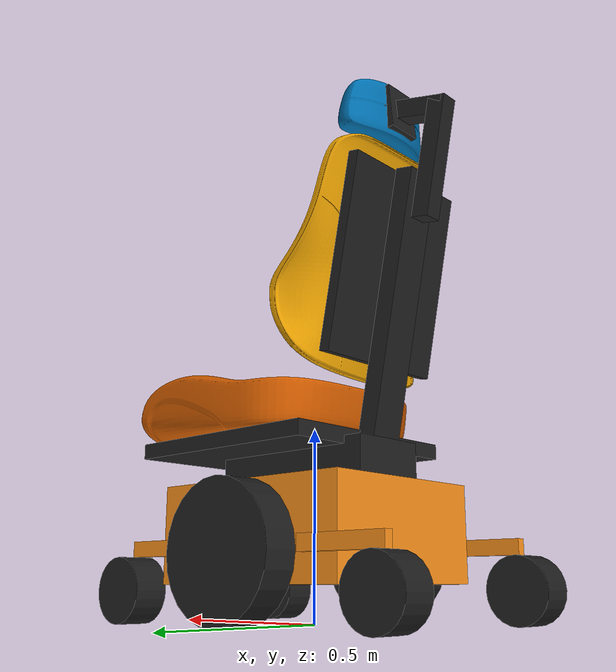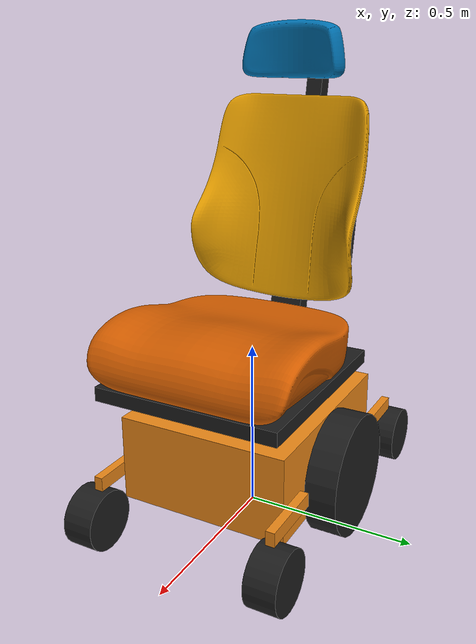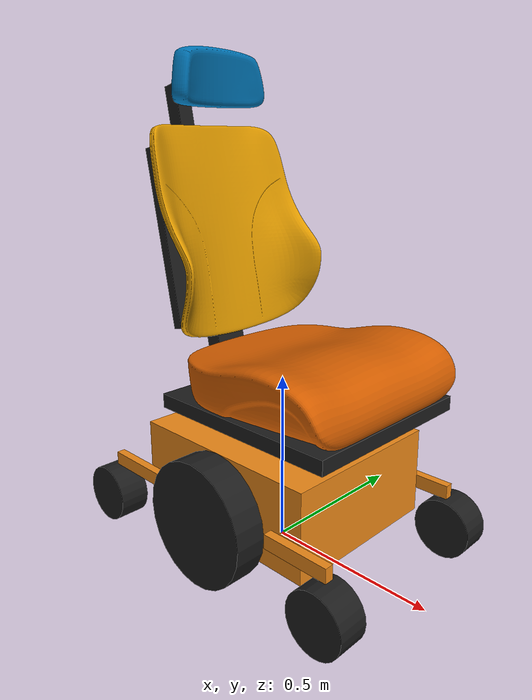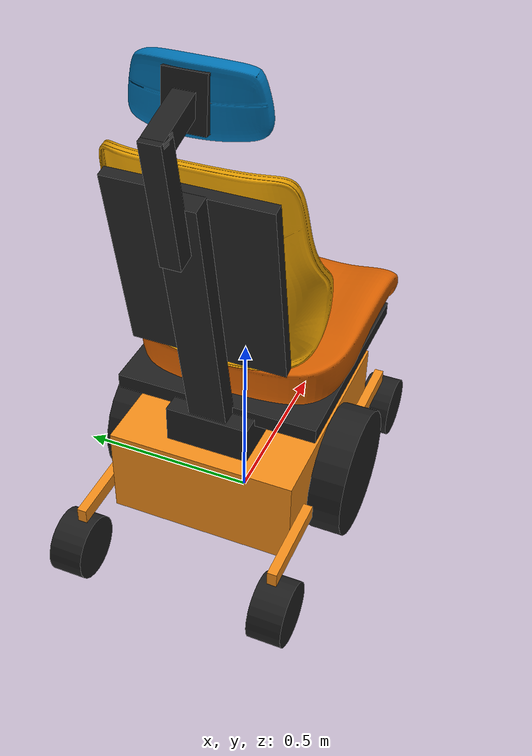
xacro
<?xml version="1.0"?>
<!-- 4 Wheel Robot with front steering and rear drive -->
<robot xmlns:xacro="http://www.ros.org/wiki/xacro" name="wheelchair">

 <!-- Import Rviz colors -->
  <xacro:include filename="$(find ros2_control_wheelchair)/description/material/wheelchair.materials.xacro" />

  <xacro:include filename="$(find ros2_control_wheelchair)/description/urdf/wheelchair_description_test.urdf.xacro" />

  <xacro:wheelchair/>

</robot>

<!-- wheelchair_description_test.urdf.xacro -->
<robot xmlns:xacro="http://www.ros.org/wiki/xacro">

  <xacro:macro name="wheelchair">

  <link name="chassis">
      <collision>
        <origin xyz="0 0 0.225" rpy="0 0 0"/>
        <geometry>
          <box size="0.6 0.5 0.25"/>
        </geometry>
      </collision>

      <visual>
        <origin xyz="0 0 0.225" rpy="0 0 0"/>
        <geometry>
          <box size="0.6 0.5 0.25"/>
        </geometry>
        <material name="orange"/>
      </visual>

      <inertial>
        <origin xyz="0.0 0.0 0.225" rpy="0 0 0"/>
        <mass value="70"/>
        <inertia
          ixx="1.82291666667"
          ixy="0.0"
          ixz="0.0"
          iyy="2.46458333333"
          iyz="0.0"
          izz="3.55833333333"/>
      </inertial>
    </link>

    <!-- left wheel Link -->
    <link name="left_wheel">
      <collision>
        <geometry>
          <cylinder length="0.09" radius="0.175" />
        </geometry>
      </collision>
      <visual>
        <geometry>
          <cylinder length="0.09" radius="0.175" />
        </geometry>
        <material name="black" />
      </visual>

      <inertial>
        <mass value="5" />
        <inertia ixx="0.041656" ixy="0.0" ixz="0.0" iyy="0.041656" iyz="0.0" izz="0.0765625" />
      </inertial>
    </link>

     <!-- right wheel Link -->
    <link name="right_wheel">
      <collision>
        <geometry>
          <cylinder length="0.09" radius="0.175" />
        </geometry>
      </collision>
      <visual>
        <geometry>
          <cylinder length="0.09" radius="0.175" />
        </geometry>
        <material name="black" />
      </visual>

      <inertial>
        <mass value="5" />
        <inertia ixx="0.041656" ixy="0.0" ixz="0.0" iyy="0.041656" iyz="0.0" izz="0.0765625" />
      </inertial>
    </link>

    <link name="fixation_front_left">
      <collision>
        <origin xyz="0 0 0" rpy="0 0 0"/>
        <geometry>
          <box size="0.2 0.025 0.04"/>
        </geometry>
      </collision>

      <visual>
        <origin xyz="0 0 0" rpy="0 0 0"/>
        <geometry>
          <box size="0.2 0.025 0.04"/>
        </geometry>
        <material name="orange"/>
      </visual>

      <inertial>
        <origin xyz="0 0 0" rpy="0 0 0"/>
        <mass value="0.5"/>
        <inertia
          ixx="0.00009270833"
          ixy="0.0"
          ixz="0.0"
          iyy="0.00173333333"
          iyz="0.0"
          izz="0.00169270833"/>
      </inertial>
    </link>

    <link name="left_front_wheel">
      <collision>
        <geometry>
          <cylinder length="0.09" radius="0.085" />
        </geometry>
      </collision>
      <visual>
        <geometry>
          <cylinder length="0.09" radius="0.085" />
        </geometry>
        <material name="black" />
      </visual>

      <inertial>
        <mass value="2" />
        <inertia ixx="0.0049625" ixy="0.0" ixz="0.0" iyy="0.0049625" iyz="0.0" izz="0.007225" />
      </inertial>
    </link>

    <link name="fixation_front_right">
      <collision>
        <origin xyz="0 0 0" rpy="0 0 0"/>
        <geometry>
          <box size="0.2 0.025 0.04"/>
        </geometry>
      </collision>

      <visual>
        <origin xyz="0 0 0" rpy="0 0 0"/>
        <geometry>
          <box size="0.2 0.025 0.04"/>
        </geometry>
        <material name="orange"/>
      </visual>

      <inertial>
        <origin xyz="0 0 0" rpy="0 0 0"/>
        <mass value="0.5"/>
        <inertia
          ixx="0.00009270833"
          ixy="0.0"
          ixz="0.0"
          iyy="0.00173333333"
          iyz="0.0"
          izz="0.00169270833"/>
      </inertial>
    </link>

    <link name="right_front_wheel">
      <collision>
        <geometry>
          <cylinder length="0.09" radius="0.085" />
        </geometry>
      </collision>
      <visual>
        <geometry>
          <cylinder length="0.09" radius="0.085" />
        </geometry>
        <material name="black" />
      </visual>

      <inertial>
        <mass value="2" />
        <inertia ixx="0.0049625" ixy="0.0" ixz="0.0" iyy="0.0049625" iyz="0.0" izz="0.007225" />
      </inertial>
    </link>

    <link name="fixation_rear_left">
      <collision>
        <origin xyz="0 0 0" rpy="0 0 0"/>
        <geometry>
          <box size="0.25 0.025 0.04"/>
        </geometry>
      </collision>

      <visual>
        <origin xyz="0 0 0" rpy="0 0 0"/>
        <geometry>
          <box size="0.25 0.025 0.04"/>
        </geometry>
        <material name="orange"/>
      </visual>

      <inertial>
        <origin xyz="0 0 0" rpy="0 0 0"/>
        <mass value="0.55"/>
        <inertia
          ixx="0.00010197916"
          ixy="0.0"
          ixz="0.0"
          iyy="0.00293791666"
          iyz="0.0"
          izz="0.00289322916"/>
      </inertial>
    </link>

    <link name="left_rear_wheel">
      <collision>
        <geometry>
          <cylinder length="0.09" radius="0.085" />
        </geometry>
      </collision>
      <visual>
        <geometry>
          <cylinder length="0.09" radius="0.085" />
        </geometry>
        <material name="black" />
      </visual>

      <inertial>
        <mass value="2" />
        <inertia ixx="0.0049625" ixy="0.0" ixz="0.0" iyy="0.0049625" iyz="0.0" izz="0.007225" />
      </inertial>
    </link>

    <link name="fixation_rear_right">
      <collision>
        <origin xyz="0 0 0" rpy="0 0 0"/>
        <geometry>
          <box size="0.25 0.025 0.04"/>
        </geometry>
      </collision>

      <visual>
        <origin xyz="0 0 0" rpy="0 0 0"/>
        <geometry>
          <box size="0.25 0.025 0.04"/>
        </geometry>
        <material name="orange"/>
      </visual>

      <inertial>
        <origin xyz="0 0 0" rpy="0 0 0"/>
        <mass value="0.55"/>
        <inertia
          ixx="0.00010197916"
          ixy="0.0"
          ixz="0.0"
          iyy="0.00293791666"
          iyz="0.0"
          izz="0.00289322916"/>
      </inertial>
    </link>

    <link name="right_rear_wheel">
      <collision>
        <geometry>
          <cylinder length="0.09" radius="0.085" />
        </geometry>
      </collision>
      <visual>
        <geometry>
          <cylinder length="0.09" radius="0.085" />
        </geometry>
        <material name="black" />
      </visual>

      <inertial>
        <mass value="2" />
        <inertia ixx="0.0049625" ixy="0.0" ixz="0.0" iyy="0.0049625" iyz="0.0" izz="0.007225" />
      </inertial>
    </link>

    <link name="seat_fixation">
      <collision>
        <origin xyz="0 0 0" rpy="0 0 0"/>
        <geometry>
          <box size="0.48 0.22 0.10"/>
        </geometry>
      </collision>

      <visual>
        <origin xyz="0 0 0" rpy="0 0 0"/>
        <geometry>
          <box size="0.48 0.22 0.10"/>
        </geometry>
        <material name="black"/>
      </visual>

      <inertial>
        <origin xyz="0.0 0.0 0.0" rpy="0 0 0"/>
        <mass value="3"/>
        <inertia
          ixx="0.0146"
          ixy="0.0"
          ixz="0.0"
          iyy="0.0601"
          iyz="0.0"
          izz="0.0697"/>
      </inertial>
    </link>

    <link name="seat">
      <collision>
        <origin xyz="0 0 0" rpy="0 0 0"/>
        <geometry>
          <box size="0.58 0.54 0.04"/>
        </geometry>
      </collision>

      <visual>
        <origin xyz="0 0 0" rpy="0 0 0"/>
        <geometry>
          <box size="0.58 0.54 0.04"/>
        </geometry>
        <material name="black"/>
      </visual>

      <inertial>
        <origin xyz="0.0 0.0 0.0" rpy="0 0 0"/>
        <mass value="2"/>
        <inertia
          ixx="0.04886666666"
          ixy="0.0"
          ixz="0.0"
          iyy="0.05633333333"
          iyz="0.0"
          izz="0.10466666666"/>
      </inertial>
    </link>

    <link name="foam_seat">
      <visual>
        <origin rpy="0 0 0" xyz="0 0 0"/>
        <geometry>
          <mesh filename="file:///home/orthopus/explorer_ws/install/ros2_control_wheelchair/share/ros2_control_wheelchair/description/meshes/visual/seat.dae" scale="0.001 0.001 0.001"/>
        </geometry>
      </visual>
      <collision>
        <origin rpy="0 0 0" xyz="0 0 0"/>
        <geometry>
          <mesh filename="file:///home/orthopus/explorer_ws/install/ros2_control_wheelchair/share/ros2_control_wheelchair/description/meshes/collision/seat.stl" scale="0.001 0.001 0.001"/>
        </geometry>
      </collision>
      <inertial>
        <origin rpy="0 0 0" xyz="0 -0.15 0"/>
        <mass value="1"/>
        <inertia ixx="0.02440833332" ixy="0" ixz="0" iyy="0.02270833332" iyz="0" izz="0.04336666666"/>
      </inertial>
    </link>

    <link name="backrest_fixation">
      <collision>
        <origin xyz="0 0 0" rpy="0 0 0"/>
        <geometry>
          <box size="0.05 0.1 0.75"/>
        </geometry>
      </collision>

      <visual>
        <origin xyz="0 0 0" rpy="0 0 0"/>
        <geometry>
          <box size="0.05 0.1 0.75"/>
        </geometry>
        <material name="black"/>
      </visual>

      <inertial>
        <origin xyz="0.0 0.0 0.0" rpy="0 0 0"/>
        <mass value="3"/>
        <inertia
          ixx="0.143125"
          ixy="0.0"
          ixz="0.0"
          iyy="0.14125"
          iyz="0.0"
          izz="0.003125"/>
      </inertial>
    </link>

    <link name="backrest">
      <collision>
        <origin xyz="0 0 0" rpy="0 0 0"/>
        <geometry>
          <box size="0.03 0.4 0.5"/>
        </geometry>
      </collision>

      <visual>
        <origin xyz="0 0 0" rpy="0 0 0"/>
        <geometry>
          <box size="0.03 0.4 0.5"/>
        </geometry>
        <material name="black"/>
      </visual>

      <inertial>
        <origin xyz="0.0 0.0 0.0" rpy="0 0 0"/>
        <mass value="7"/>
        <inertia
          ixx="0.23916666666"
          ixy="0.0"
          ixz="0.0"
          iyy="0.14635833333"
          iyz="0.0"
          izz="0.09385833333"/>
      </inertial>
    </link>

    <link name="foam_backrest">
      <visual>
        <origin rpy="0 0 0" xyz="0 0 0"/>
        <geometry>
          <mesh filename="file:///home/orthopus/explorer_ws/install/ros2_control_wheelchair/share/ros2_control_wheelchair/description/meshes/visual/backrest.dae" scale="0.001 0.001 0.001"/>
        </geometry>
      </visual>
      <collision>
        <origin rpy="0 0 0" xyz="0 0 0"/>
        <geometry>
          <mesh filename="file:///home/orthopus/explorer_ws/install/ros2_control_wheelchair/share/ros2_control_wheelchair/description/meshes/collision/backrest.stl" scale="0.001 0.001 0.001"/>
        </geometry>
      </collision>
      <inertial>
        <origin rpy="0 0 0" xyz="0 0 0"/>
        <mass value="0.8"/>
        <inertia ixx="0.02402666666" ixy="0" ixz="0" iyy="0.03810666666" iyz="0" izz="0.01413333333"/>
      </inertial>
    </link>

    <link name="headrest_fixation">
      <collision>
        <origin xyz="0 0 0" rpy="0 0 0"/>
        <geometry>
          <box size="0.05 0.05 0.32"/>
        </geometry>
      </collision>

      <visual>
        <origin xyz="0 0 0" rpy="0 0 0"/>
        <geometry>
          <box size="0.05 0.05 0.32"/>
        </geometry>
        <material name="black"/>
      </visual>

      <inertial>
        <origin xyz="0.0 0.0 0.0" rpy="0 0 0"/>
        <mass value="0.8"/>
        <inertia
          ixx="0.00699333333"
          ixy="0.0"
          ixz="0.0"
          iyy="0.00699333333"
          iyz="0.0"
          izz="0.00033333333"/>
      </inertial>
    </link>

    <link name="headrest_fixation2">
      <collision>
        <origin xyz="0 0 0" rpy="0 0 0"/>
        <geometry>
          <box size="0.05 0.05 0.15"/>
        </geometry>
      </collision>

      <visual>
        <origin xyz="0 0 0" rpy="0 0 0"/>
        <geometry>
          <box size="0.05 0.05 0.15"/>
        </geometry>
        <material name="black"/>
      </visual>

      <inertial>
        <origin xyz="0.0 0.0 0.0" rpy="0 0 0"/>
        <mass value="0.4"/>
        <inertia
          ixx="0.00083333333"
          ixy="0.0"
          ixz="0.0"
          iyy="0.00083333333"
          iyz="0.0"
          izz="0.00016666666"/>
      </inertial>
    </link>

    <link name="headrest">
      <collision>
        <origin xyz="0 0 0" rpy="0 0 0"/>
        <geometry>
          <box size="0.05 0.1 0.125"/>
        </geometry>
      </collision>

      <visual>
        <origin xyz="0 0 0" rpy="0 0 0"/>
        <geometry>
          <box size="0.02 0.1 0.125"/>
        </geometry>
        <material name="black"/>
      </visual>

      <inertial>
        <origin xyz="0.0 0.0 0.0" rpy="0 0 0"/>
        <mass value="0.5"/>
        <inertia
          ixx="0.00106770833"
          ixy="0.0"
          ixz="0.0"
          iyy="0.00066770833"
          iyz="0.0"
          izz="0.00043333333"/>
      </inertial>
    </link>

    <link name="foam_headrest">
      <visual>
        <origin rpy="0 0 0" xyz="0 0 0"/>
        <geometry>
          <mesh filename="file:///home/orthopus/explorer_ws/install/ros2_control_wheelchair/share/ros2_control_wheelchair/description/meshes/visual/headrest.dae" scale="0.001 0.001 0.001"/>
        </geometry>
      </visual>
      <collision>
        <origin rpy="0 0 0" xyz="0 0 0"/>
        <geometry>
          <mesh filename="file:///home/orthopus/explorer_ws/install/ros2_control_wheelchair/share/ros2_control_wheelchair/description/meshes/collision/headrest.stl" scale="0.001 0.001 0.001"/>
        </geometry>
      </collision>
      <inertial>
        <origin rpy="0 0 0" xyz="0 0 0"/>
        <mass value="0.5"/>
        <inertia ixx="0.00070416666" ixy="0" ixz="0" iyy="0.00386666666" iyz="0" izz="0.00337083333"/>
      </inertial>
    </link>

    <joint name="left_wheel_joint" type="continuous">
      <origin xyz="0.0 0.295 0.175" rpy="-1.5707 0 0"/>
      <parent link="chassis"/>
      <child link="left_wheel"/>
      <axis xyz="0 0 1"/>
    </joint>

    <joint name="right_wheel_joint" type="continuous">
      <origin xyz="0.0 -0.295 0.175" rpy="-1.5707 0 0"/>
      <parent link="chassis"/>
      <child link="right_wheel"/>
      <axis xyz="0 0 1"/>
    </joint>

    <joint name="fixation_front_left_joint" type="fixed">
      <origin xyz="0.3 0.2625 0.19" rpy="0 0 0"/>
      <parent link="chassis"/>
      <child link="fixation_front_left"/>
    </joint>

    <joint name="left_front_wheel_joint" type="revolute">
      <origin xyz="0.1 0.0125 -0.105" rpy="-1.5707 0 0"/>
      <parent link="fixation_front_left"/>
      <child link="left_front_wheel"/>
      <axis xyz="0 1 0"/>
      <dynamics friction="2"/>
      <limit effort="1000.0" lower="${-pi/2}" upper="${pi/2}" velocity="2.5"/>
    </joint>

    <joint name="fixation_front_right_joint" type="fixed">
      <origin xyz="0.3 -0.2625 0.19" rpy="0 0 0"/>
      <parent link="chassis"/>
      <child link="fixation_front_right"/>
    </joint>

    <joint name="right_front_wheel_joint" type="revolute">
      <origin xyz="0.1 -0.0125 -0.105" rpy="-1.5707 0 0"/>
      <parent link="fixation_front_right"/>
      <child link="right_front_wheel"/>
      <axis xyz="0 1 0"/>
      <dynamics friction="1.5"/>
      <limit effort="1000.0" lower="${-pi/2}" upper="${pi/2}" velocity="2.5"/>
    </joint>

    <joint name="fixation_rear_left_joint" type="fixed">
      <origin xyz="-0.325 0.2625 0.19" rpy="0 0 0"/>
      <parent link="chassis"/>
      <child link="fixation_rear_left"/>
    </joint>

    <joint name="left_rear_wheel_joint" type="revolute">
      <origin xyz="-0.125 0.0125 -0.105" rpy="-1.5707 0 0"/>
      <parent link="fixation_rear_left"/>
      <child link="left_rear_wheel"/>
      <axis xyz="0 1 0"/>
      <dynamics friction="1.5"/>
      <limit effort="1000.0" lower="${-pi/2}" upper="${pi/2}" velocity="2.5"/>
    </joint>

    <joint name="fixation_rear_right_joint" type="fixed">
      <origin xyz="-0.325 -0.2625 0.19" rpy="0 0 0"/>
      <parent link="chassis"/>
      <child link="fixation_rear_right"/>
    </joint>

    <joint name="right_rear_wheel_joint" type="revolute">
      <origin xyz="-0.125 -0.0125 -0.105" rpy="-1.5707 0 0"/>
      <parent link="fixation_rear_right"/>
      <child link="right_rear_wheel"/>
      <axis xyz="0 1 0"/>
      <dynamics friction="1.5"/>
      <limit effort="1000.0" lower="${-pi/2}" upper="${pi/2}" velocity="2.5"/>
    </joint>

    <joint name="seat_fixation_joint" type="fixed">
      <origin xyz="-0.01 0.0 0.4" rpy="0 0 0"/>
      <parent link="chassis"/>
      <child link="seat_fixation"/>
    </joint>

    <joint name="seat_joint" type="fixed">
      <origin xyz="0.1 0.0 0.05" rpy="0 0 0"/>
      <parent link="seat_fixation"/>
      <child link="seat"/>
    </joint>

    <joint name="foam_seat_joint" type="fixed">
      <origin xyz="-0.10 -0.005 0.02" rpy="0 0 1.5707"/>
      <parent link="seat"/>
      <child link="foam_seat"/>
    </joint>

    <joint name="backrest_fixation_joint" type="fixed">
      <origin xyz="-0.27 -0 0.36" rpy="0 -0.2 0"/>
      <parent link="seat_fixation"/>
      <child link="backrest_fixation"/>
    </joint>

    <joint name="backrest_joint" type="fixed">
      <origin xyz="0.04 0.0 0.12" rpy="0 0.0 0"/>
      <parent link="backrest_fixation"/>
      <child link="backrest"/>
    </joint>

    <joint name="foam_backrest_joint" type="fixed">
      <origin xyz="0.06 0 -0.09" rpy="0.13 0 1.5707"/>
      <parent link="backrest"/>
      <child link="foam_backrest"/>
    </joint>

    <joint name="headrest_fixation_joint" type="fixed">
      <origin xyz="-0.05 -0 0.41" rpy="0 0 0"/>
      <parent link="backrest_fixation"/>
      <child link="headrest_fixation"/>
    </joint>

    <joint name="headrest_fixation2_joint" type="fixed">
      <origin xyz="0.06 0 0.14" rpy="0 1.5 0"/>
      <parent link="headrest_fixation"/>
      <child link="headrest_fixation2"/>
    </joint>

    <joint name="headrest_joint" type="fixed">
      <origin xyz="0.0 0 0.075" rpy="0 -1.2 0"/>
      <parent link="headrest_fixation2"/>
      <child link="headrest"/>
    </joint>

    <joint name="foam_headrest_joint" type="fixed">
      <origin xyz="0.05 0 0.0" rpy="0 0 1.5707"/>
      <parent link="headrest"/>
      <child link="foam_headrest"/>
    </joint>

</xacro:macro>

</robot>
